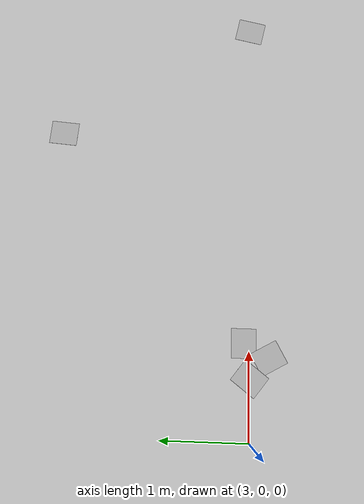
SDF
<sdf version="1.7">
 <world name="default">
  <model name="ground_plane">
   <static>1</static>
   <link name="link">
    <collision name="collision">
     <geometry><plane><normal>0 0 1</normal><size>100 100</size></plane></geometry>
     <surface><friction><ode><mu>100</mu><mu2>50</mu2></ode></friction></surface>
    </collision>
    <visual name="visual">
     <cast_shadows>0</cast_shadows>
     <geometry><plane><normal>0 0 1</normal><size>100 100</size></plane></geometry>
     <material>
      <script><uri>file://media/materials/scripts/gazebo.material</uri><name>Gazebo/Grey</name></script>
     </material>
    </visual>
   </link>
  </model>
  <model name="stag-500">
   <link name="link">
    <inertial>
     <mass>1</mass>
     <inertia><ixx>0.19</ixx><ixy>0</ixy><ixz>0</ixz><iyy>0.19</iyy><iyz>0</iyz><izz>0.19</izz></inertia>
    </inertial>
    <visual name="visual">
     <geometry><box><size>0.335 0.285 0.001</size></box></geometry>
     <material>
      <script>
       <uri>model://TURN-stag-500/material/scripts</uri>
       <uri>model://TURN-stag-500/material/texture</uri>
       <name>stag-500/Diffuse</name>
      </script>
     </material>
    </visual>
    <collision name="collision">
     <geometry><box><size>0.335 0.285 0.001</size></box></geometry>
     <surface>
      <friction>
       <ode><mu>1</mu><mu2>1</mu2><fdir1>0 0 0</fdir1><slip1>0</slip1><slip2>0</slip2></ode>
       <torsional>
        <coefficient>1</coefficient>
        <patch_radius>0</patch_radius>
        <surface_radius>0</surface_radius>
        <use_patch_radius>1</use_patch_radius>
        <ode><slip>0</slip></ode>
       </torsional>
      </friction>
      <bounce><restitution_coefficient>0</restitution_coefficient><threshold>1e+06</threshold></bounce>
      <contact>
       <collide_without_contact>0</collide_without_contact>
       <collide_without_contact_bitmask>1</collide_without_contact_bitmask>
       <collide_bitmask>1</collide_bitmask>
       <ode>
        <soft_cfm>0</soft_cfm>
        <soft_erp>0.2</soft_erp>
        <kp>1e+13</kp>
        <kd>1</kd>
        <max_vel>0.01</max_vel>
        <min_depth>0</min_depth>
       </ode>
       <bullet>
        <split_impulse>1</split_impulse>
        <split_impulse_penetration_threshold>-0.01</split_impulse_penetration_threshold>
        <soft_cfm>0</soft_cfm>
        <soft_erp>0.2</soft_erp>
        <kp>1e+13</kp>
        <kd>1</kd>
       </bullet>
      </contact>
     </surface>
    </collision>
   </link>
   <static>1</static>
   <pose>3.6975 -0.006963 0 0 0 -2.22259</pose>
  </model>
  <model name="stag-501">
   <link name="link">
    <inertial>
     <mass>1</mass>
     <inertia><ixx>0.19</ixx><ixy>0</ixy><ixz>0</ixz><iyy>0.19</iyy><iyz>0</iyz><izz>0.19</izz></inertia>
    </inertial>
    <visual name="visual">
     <geometry><box><size>0.335 0.285 0.001</size></box></geometry>
     <material>
      <script>
       <uri>model://TURN-stag-501/material/scripts</uri>
       <uri>model://TURN-stag-501/material/texture</uri>
       <name>stag-501/Diffuse</name>
      </script>
     </material>
    </visual>
    <collision name="collision">
     <geometry><box><size>0.335 0.285 0.001</size></box></geometry>
     <surface>
      <friction>
       <ode><mu>1</mu><mu2>1</mu2><fdir1>0 0 0</fdir1><slip1>0</slip1><slip2>0</slip2></ode>
       <torsional>
        <coefficient>1</coefficient>
        <patch_radius>0</patch_radius>
        <surface_radius>0</surface_radius>
        <use_patch_radius>1</use_patch_radius>
        <ode><slip>0</slip></ode>
       </torsional>
      </friction>
      <bounce><restitution_coefficient>0</restitution_coefficient><threshold>1e+06</threshold></bounce>
      <contact>
       <collide_without_contact>0</collide_without_contact>
       <collide_without_contact_bitmask>1</collide_without_contact_bitmask>
       <collide_bitmask>1</collide_bitmask>
       <ode>
        <soft_cfm>0</soft_cfm>
        <soft_erp>0.2</soft_erp>
        <kp>1e+13</kp>
        <kd>1</kd>
        <max_vel>0.01</max_vel>
        <min_depth>0</min_depth>
       </ode>
       <bullet>
        <split_impulse>1</split_impulse>
        <split_impulse_penetration_threshold>-0.01</split_impulse_penetration_threshold>
        <soft_cfm>0</soft_cfm>
        <soft_erp>0.2</soft_erp>
        <kp>1e+13</kp>
        <kd>1</kd>
       </bullet>
      </contact>
     </surface>
    </collision>
   </link>
   <static>1</static>
   <pose>3.9308 -0.226003 0 0 0 -1.0668</pose>
  </model>
  <model name="stag-506">
   <link name="link">
    <inertial>
     <mass>1</mass>
     <inertia><ixx>0.19</ixx><ixy>0</ixy><ixz>0</ixz><iyy>0.19</iyy><iyz>0</iyz><izz>0.19</izz></inertia>
    </inertial>
    <visual name="visual">
     <geometry><box><size>0.335 0.285 0.001</size></box></geometry>
     <material>
      <script>
       <uri>model://TURN-stag-506/material/scripts</uri>
       <uri>model://TURN-stag-506/material/texture</uri>
       <name>stag-506/Diffuse</name>
      </script>
     </material>
    </visual>
    <collision name="collision">
     <geometry><box><size>0.335 0.285 0.001</size></box></geometry>
     <surface>
      <friction>
       <ode><mu>1</mu><mu2>1</mu2><fdir1>0 0 0</fdir1><slip1>0</slip1><slip2>0</slip2></ode>
       <torsional>
        <coefficient>1</coefficient>
        <patch_radius>0</patch_radius>
        <surface_radius>0</surface_radius>
        <use_patch_radius>1</use_patch_radius>
        <ode><slip>0</slip></ode>
       </torsional>
      </friction>
      <bounce><restitution_coefficient>0</restitution_coefficient><threshold>1e+06</threshold></bounce>
      <contact>
       <collide_without_contact>0</collide_without_contact>
       <collide_without_contact_bitmask>1</collide_without_contact_bitmask>
       <collide_bitmask>1</collide_bitmask>
       <ode>
        <soft_cfm>0</soft_cfm>
        <soft_erp>0.2</soft_erp>
        <kp>1e+13</kp>
        <kd>1</kd>
        <max_vel>0.01</max_vel>
        <min_depth>0</min_depth>
       </ode>
       <bullet>
        <split_impulse>1</split_impulse>
        <split_impulse_penetration_threshold>-0.01</split_impulse_penetration_threshold>
        <soft_cfm>0</soft_cfm>
        <soft_erp>0.2</soft_erp>
        <kp>1e+13</kp>
        <kd>1</kd>
       </bullet>
      </contact>
     </surface>
    </collision>
   </link>
   <static>1</static>
   <pose>4.08964 0.063668 0 0 -0 0</pose>
  </model>
  <model name="stag-507">
   <link name="link">
    <inertial>
     <mass>1</mass>
     <inertia><ixx>0.19</ixx><ixy>0</ixy><ixz>0</ixz><iyy>0.19</iyy><iyz>0</iyz><izz>0.19</izz></inertia>
    </inertial>
    <visual name="visual">
     <geometry><box><size>0.335 0.285 0.001</size></box></geometry>
     <material>
      <script>
       <uri>model://TURN-stag-507/material/scripts</uri>
       <uri>model://TURN-stag-507/material/texture</uri>
       <name>stag-507/Diffuse</name>
      </script>
     </material>
    </visual>
    <collision name="collision">
     <geometry><box><size>0.335 0.285 0.001</size></box></geometry>
     <surface>
      <friction>
       <ode><mu>1</mu><mu2>1</mu2><fdir1>0 0 0</fdir1><slip1>0</slip1><slip2>0</slip2></ode>
       <torsional>
        <coefficient>1</coefficient>
        <patch_radius>0</patch_radius>
        <surface_radius>0</surface_radius>
        <use_patch_radius>1</use_patch_radius>
        <ode><slip>0</slip></ode>
       </torsional>
      </friction>
      <bounce><restitution_coefficient>0</restitution_coefficient><threshold>1e+06</threshold></bounce>
      <contact>
       <collide_without_contact>0</collide_without_contact>
       <collide_without_contact_bitmask>1</collide_without_contact_bitmask>
       <collide_bitmask>1</collide_bitmask>
       <ode>
        <soft_cfm>0</soft_cfm>
        <soft_erp>0.2</soft_erp>
        <kp>1e+13</kp>
        <kd>1</kd>
        <max_vel>0.01</max_vel>
        <min_depth>0</min_depth>
       </ode>
       <bullet>
        <split_impulse>1</split_impulse>
        <split_impulse_penetration_threshold>-0.01</split_impulse_penetration_threshold>
        <soft_cfm>0</soft_cfm>
        <soft_erp>0.2</soft_erp>
        <kp>1e+13</kp>
        <kd>1</kd>
       </bullet>
      </contact>
     </surface>
    </collision>
   </link>
   <static>1</static>
   <pose>8.01455 -0.0043 0 0 0 -1.78121</pose>
  </model>
  <model name="stag-13">
   <link name="link">
    <inertial>
     <mass>1</mass>
     <inertia><ixx>0.19</ixx><ixy>0</ixy><ixz>0</ixz><iyy>0.19</iyy><iyz>0</iyz><izz>0.19</izz></inertia>
    </inertial>
    <visual name="visual">
     <geometry><box><size>0.335 0.285 0.001</size></box></geometry>
     <material>
      <script>
       <uri>model://TURN-stag-13/material/scripts</uri>
       <uri>model://TURN-stag-13/material/texture</uri>
       <name>stag-13/Diffuse</name>
      </script>
     </material>
    </visual>
    <collision name="collision">
     <geometry><box><size>0.335 0.285 0.001</size></box></geometry>
     <surface>
      <friction>
       <ode><mu>1</mu><mu2>1</mu2><fdir1>0 0 0</fdir1><slip1>0</slip1><slip2>0</slip2></ode>
       <torsional>
        <coefficient>1</coefficient>
        <patch_radius>0</patch_radius>
        <surface_radius>0</surface_radius>
        <use_patch_radius>1</use_patch_radius>
        <ode><slip>0</slip></ode>
       </torsional>
      </friction>
      <bounce><restitution_coefficient>0</restitution_coefficient><threshold>1e+06</threshold></bounce>
      <contact>
       <collide_without_contact>0</collide_without_contact>
       <collide_without_contact_bitmask>1</collide_without_contact_bitmask>
       <collide_bitmask>1</collide_bitmask>
       <ode>
        <soft_cfm>0</soft_cfm>
        <soft_erp>0.2</soft_erp>
        <kp>1e+13</kp>
        <kd>1</kd>
        <max_vel>0.01</max_vel>
        <min_depth>0</min_depth>
       </ode>
       <bullet>
        <split_impulse>1</split_impulse>
        <split_impulse_penetration_threshold>-0.01</split_impulse_penetration_threshold>
        <soft_cfm>0</soft_cfm>
        <soft_erp>0.2</soft_erp>
        <kp>1e+13</kp>
        <kd>1</kd>
       </bullet>
      </contact>
     </surface>
    </collision>
   </link>
   <static>1</static>
   <pose>6.5621 2.29429 0 0 -0 1.48854</pose>
  </model>
 </world>
</sdf>
